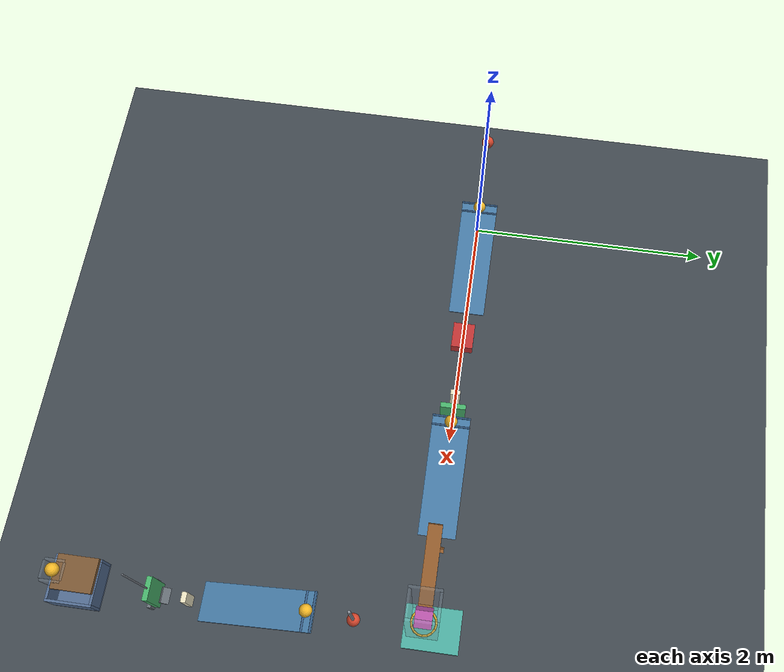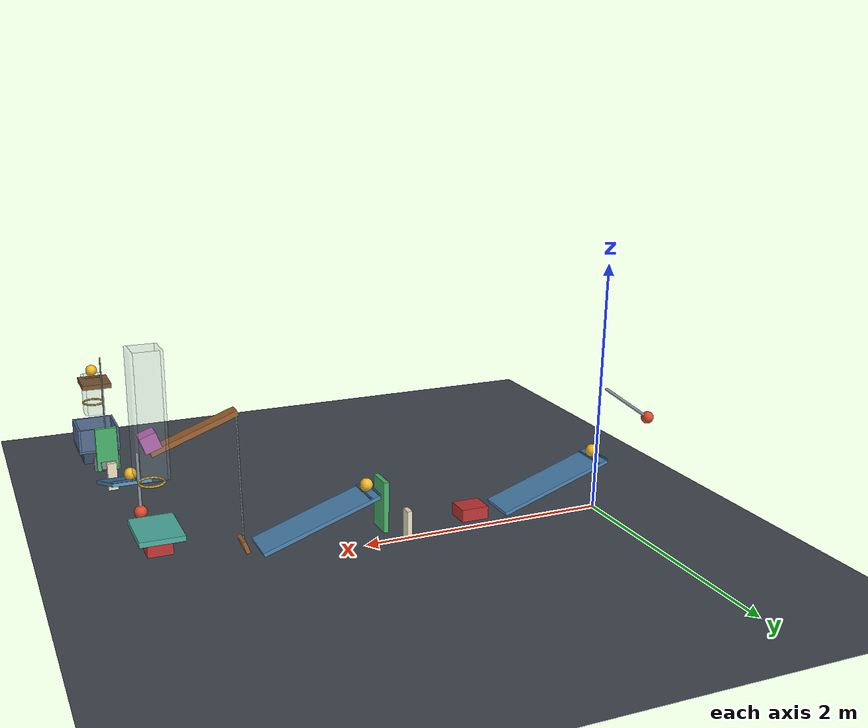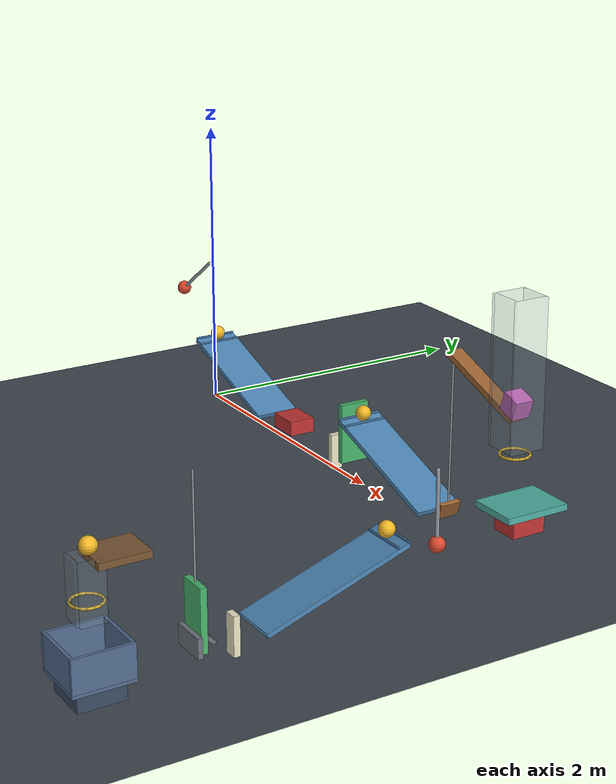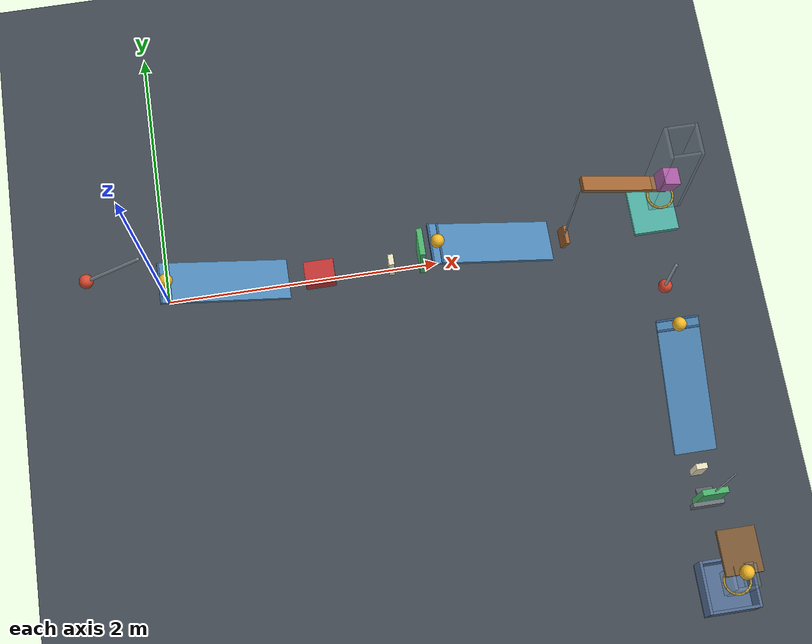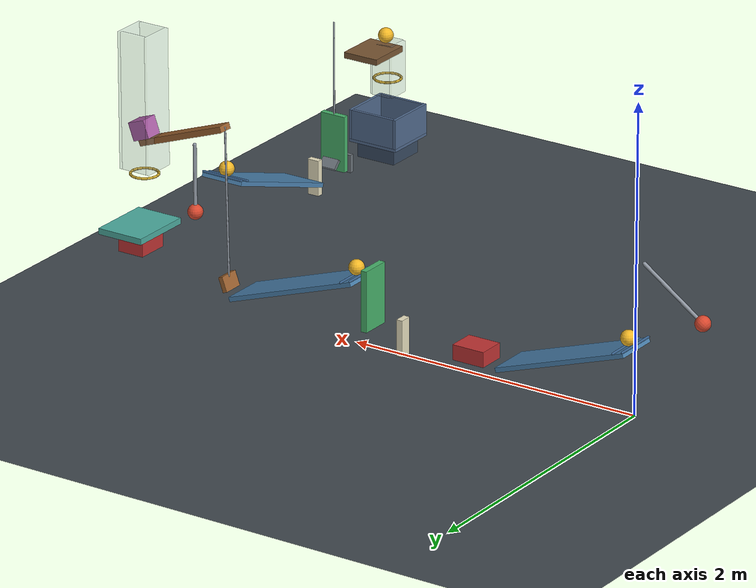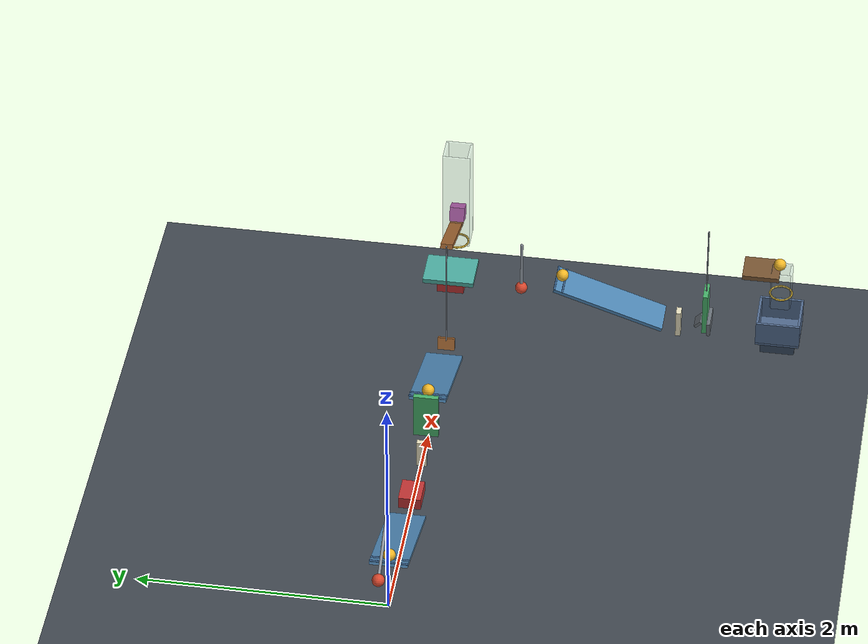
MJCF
<mujoco model="passive_chain_reaction">
  <!-- SI units. All generalized velocities are zero in the start keyframe. -->
  <!-- MuJoCo has compliant contacts rather than a Newton restitution coefficient. -->
  <!-- solref damping ratio 0.6901 approximates restitution 0.05. -->
  <!-- This is an unexecuted candidate, not a simulation-verified chain. -->
  <!-- Ring1 is compliant: a perfectly rigid 0.12 m cube cannot pass a perfectly rigid circular 0.16 m aperture. -->

  <compiler angle="degree" autolimits="true" inertiafromgeom="true"/>
  <option timestep="0.002" gravity="0 0 -9.81" integrator="implicitfast" cone="elliptic" iterations="100" tolerance="1e-9"/>
  <size njmax="3000" nconmax="1000"/>

  <visual>
    <headlight ambient="0.4 0.4 0.4" diffuse="0.7 0.7 0.7" specular="0.2 0.2 0.2"/>
    <map znear="0.01" zfar="50"/>
  </visual>

  <worldbody>
    <light name="overhead_light" pos="2 -1 6" dir="0 0 -1" directional="true"/>
    <camera name="overview" pos="7 -8 6" xyaxes="0.8 0.6 0 -0.3 0.4 0.866"/>
    <geom name="floor" type="plane" size="10 10 0.1" friction="0.68 0.001 0.0001" solref="0.006 0.6901" solimp="0.95 0.99 0.001" rgba="0.25 0.28 0.31 1"/>

    <!-- First pendulum: its starting body orientation is 55 degrees left of vertical. -->
    <body name="pendulum1" pos="-0.055 0 0.99588" quat="0.8870108 0 0.4617486 0">
      <joint name="pendulum1_hinge" type="hinge" axis="0 1 0" range="-75 0" damping="0.04"/>
      <geom name="pendulum1_rod" type="capsule" fromto="0 0 0 0 0 -0.50" size="0.012" mass="0.05" friction="0.68 0.001 0.0001" solref="0.006 0.6901" rgba="0.55 0.58 0.62 1"/>
      <geom name="pendulum1_bob" type="sphere" pos="0 0 -0.50" size="0.05" mass="0.35" friction="0.68 0.001 0.0001" solref="0.006 0.6901" rgba="0.85 0.28 0.18 1"/>
    </body>

    <body name="ball1" pos="0.049371 0 0.49588">
      <freejoint name="ball1_free"/>
      <geom name="ball1_geom" type="sphere" size="0.05" mass="0.20" friction="0.68 0.001 0.0001" solref="0.006 0.6901" solimp="0.95 0.99 0.001" rgba="0.95 0.72 0.15 1"/>
    </body>

    <!-- Each ramp is 0.95 m along its slope, 0.30 m wide, and inclined 19 degrees. -->
    <!-- Small transverse ridges form passive starting seats for the ramp balls. -->
    <body name="ramp1" pos="0.444238 0 0.290462" quat="0.9862856 0 0.1650476 0">
      <geom name="ramp1_surface" type="box" size="0.475 0.15 0.015" friction="0.68 0.001 0.0001" solref="0.006 0.6901" rgba="0.30 0.52 0.70 1"/>
      <geom name="ramp1_seat_front" type="capsule" fromto="-0.405 -0.145 0.018 -0.405 0.145 0.018" size="0.008" friction="0.68 0.001 0.0001" solref="0.006 0.6901" rgba="0.22 0.38 0.55 1"/>
      <geom name="ramp1_seat_back" type="capsule" fromto="-0.475 -0.145 0.018 -0.475 0.145 0.018" size="0.008" friction="0.68 0.001 0.0001" solref="0.006 0.6901" rgba="0.22 0.38 0.55 1"/>
    </body>

    <body name="cart1" pos="1.128243 0 0.15">
      <joint name="cart1_slide" type="slide" axis="1 0 0" range="0 0.40" damping="0.20"/>
      <geom name="cart1_geom" type="box" size="0.11 0.09 0.05" mass="0.50" friction="0.68 0.001 0.0001" solref="0.006 0.6901" rgba="0.75 0.20 0.20 1"/>
    </body>

    <body name="domino1" pos="1.658243 0 0.12">
      <freejoint name="domino1_free"/>
      <geom name="domino1_geom" type="box" size="0.02 0.04 0.12" mass="0.25" friction="0.68 0.001 0.0001" solref="0.006 0.6901" solimp="0.95 0.99 0.001" rgba="0.92 0.89 0.76 1"/>
    </body>

    <body name="flap1" pos="1.878243 0 0.53">
      <joint name="flap1_hinge" type="hinge" axis="0 -1 0" range="0 65" damping="0.04" solreflimit="0.004 1"/>
      <geom name="flap1_panel" type="box" pos="0 0 -0.20" size="0.02 0.10 0.20" mass="0.30" friction="0.68 0.001 0.0001" solref="0.006 0.6901" rgba="0.28 0.70 0.42 1"/>
    </body>

    <body name="ball2" pos="1.997614 0 0.49588">
      <freejoint name="ball2_free"/>
      <geom name="ball2_geom" type="sphere" size="0.05" mass="0.20" friction="0.68 0.001 0.0001" solref="0.006 0.6901" solimp="0.95 0.99 0.001" rgba="0.95 0.72 0.15 1"/>
    </body>

    <body name="ramp2" pos="2.392481 0 0.290462" quat="0.9862856 0 0.1650476 0">
      <geom name="ramp2_surface" type="box" size="0.475 0.15 0.015" friction="0.68 0.001 0.0001" solref="0.006 0.6901" rgba="0.30 0.52 0.70 1"/>
      <geom name="ramp2_seat_front" type="capsule" fromto="-0.405 -0.145 0.018 -0.405 0.145 0.018" size="0.008" friction="0.68 0.001 0.0001" solref="0.006 0.6901" rgba="0.22 0.38 0.55 1"/>
      <geom name="ramp2_seat_back" type="capsule" fromto="-0.475 -0.145 0.018 -0.475 0.145 0.018" size="0.008" friction="0.68 0.001 0.0001" solref="0.006 0.6901" rgba="0.22 0.38 0.55 1"/>
    </body>

    <!-- The seesaw has a lightweight rigid input arm reaching the ramp exit. -->
    <!-- Its beam starts 20 degrees right-end-down and has 40 degrees of travel. -->
    <body name="seesaw1" pos="3.271486 0 1.08" quat="0.9848078 0 0.1736482 0">
      <joint name="seesaw1_hinge" type="hinge" axis="0 -1 0" range="0 40" damping="0.04" solreflimit="0.004 1"/>
      <geom name="seesaw1_beam" type="box" size="0.325 0.05 0.02" mass="0.540" friction="0.68 0.001 0.0001" solref="0.006 0.6901" rgba="0.62 0.39 0.19 1"/>
      <geom name="seesaw1_input_arm" type="capsule" fromto="-0.325 0 0 0.00237 0 -0.956887" size="0.006" mass="0.001" friction="0.68 0.001 0.0001" solref="0.006 0.6901" rgba="0.55 0.58 0.62 1"/>
      <geom name="seesaw1_input_pad" type="box" pos="0.00237 0 -0.956887" size="0.015 0.07 0.05" mass="0.009" friction="0.68 0.001 0.0001" solref="0.006 0.6901" rgba="0.62 0.39 0.19 1"/>
    </body>

    <body name="block1" pos="3.576054 0 1.054279" quat="0.9848078 0 0.1736482 0">
      <freejoint name="block1_free"/>
      <geom name="block1_geom" type="box" size="0.06 0.06 0.06" mass="0.35" friction="0.68 0.001 0.0001" solref="0.006 0.6901" solimp="0.95 0.99 0.001" rgba="0.78 0.36 0.72 1"/>
    </body>

    <!-- Sixteen capsule segments approximate a horizontal circular ring. -->
    <!-- The minimum clear diameter is 0.16 m. -->
    <body name="ring1" pos="3.576054 0 0.754279">
      <geom name="ring1_segment01" type="capsule" fromto="0.089724 0 0 0.082894 0.034336 0" size="0.008" priority="1" friction="0.68 0.001 0.0001" solref="0.03 0.6901" solimp="0.90 0.95 0.01" rgba="0.80 0.66 0.18 1"/>
      <geom name="ring1_segment02" type="capsule" fromto="0.082894 0.034336 0 0.063445 0.063445 0" size="0.008" priority="1" friction="0.68 0.001 0.0001" solref="0.03 0.6901" solimp="0.90 0.95 0.01" rgba="0.80 0.66 0.18 1"/>
      <geom name="ring1_segment03" type="capsule" fromto="0.063445 0.063445 0 0.034336 0.082894 0" size="0.008" priority="1" friction="0.68 0.001 0.0001" solref="0.03 0.6901" solimp="0.90 0.95 0.01" rgba="0.80 0.66 0.18 1"/>
      <geom name="ring1_segment04" type="capsule" fromto="0.034336 0.082894 0 0 0.089724 0" size="0.008" priority="1" friction="0.68 0.001 0.0001" solref="0.03 0.6901" solimp="0.90 0.95 0.01" rgba="0.80 0.66 0.18 1"/>
      <geom name="ring1_segment05" type="capsule" fromto="0 0.089724 0 -0.034336 0.082894 0" size="0.008" priority="1" friction="0.68 0.001 0.0001" solref="0.03 0.6901" solimp="0.90 0.95 0.01" rgba="0.80 0.66 0.18 1"/>
      <geom name="ring1_segment06" type="capsule" fromto="-0.034336 0.082894 0 -0.063445 0.063445 0" size="0.008" priority="1" friction="0.68 0.001 0.0001" solref="0.03 0.6901" solimp="0.90 0.95 0.01" rgba="0.80 0.66 0.18 1"/>
      <geom name="ring1_segment07" type="capsule" fromto="-0.063445 0.063445 0 -0.082894 0.034336 0" size="0.008" priority="1" friction="0.68 0.001 0.0001" solref="0.03 0.6901" solimp="0.90 0.95 0.01" rgba="0.80 0.66 0.18 1"/>
      <geom name="ring1_segment08" type="capsule" fromto="-0.082894 0.034336 0 -0.089724 0 0" size="0.008" priority="1" friction="0.68 0.001 0.0001" solref="0.03 0.6901" solimp="0.90 0.95 0.01" rgba="0.80 0.66 0.18 1"/>
      <geom name="ring1_segment09" type="capsule" fromto="-0.089724 0 0 -0.082894 -0.034336 0" size="0.008" priority="1" friction="0.68 0.001 0.0001" solref="0.03 0.6901" solimp="0.90 0.95 0.01" rgba="0.80 0.66 0.18 1"/>
      <geom name="ring1_segment10" type="capsule" fromto="-0.082894 -0.034336 0 -0.063445 -0.063445 0" size="0.008" priority="1" friction="0.68 0.001 0.0001" solref="0.03 0.6901" solimp="0.90 0.95 0.01" rgba="0.80 0.66 0.18 1"/>
      <geom name="ring1_segment11" type="capsule" fromto="-0.063445 -0.063445 0 -0.034336 -0.082894 0" size="0.008" priority="1" friction="0.68 0.001 0.0001" solref="0.03 0.6901" solimp="0.90 0.95 0.01" rgba="0.80 0.66 0.18 1"/>
      <geom name="ring1_segment12" type="capsule" fromto="-0.034336 -0.082894 0 0 -0.089724 0" size="0.008" priority="1" friction="0.68 0.001 0.0001" solref="0.03 0.6901" solimp="0.90 0.95 0.01" rgba="0.80 0.66 0.18 1"/>
      <geom name="ring1_segment13" type="capsule" fromto="0 -0.089724 0 0.034336 -0.082894 0" size="0.008" priority="1" friction="0.68 0.001 0.0001" solref="0.03 0.6901" solimp="0.90 0.95 0.01" rgba="0.80 0.66 0.18 1"/>
      <geom name="ring1_segment14" type="capsule" fromto="0.034336 -0.082894 0 0.063445 -0.063445 0" size="0.008" priority="1" friction="0.68 0.001 0.0001" solref="0.03 0.6901" solimp="0.90 0.95 0.01" rgba="0.80 0.66 0.18 1"/>
      <geom name="ring1_segment15" type="capsule" fromto="0.063445 -0.063445 0 0.082894 -0.034336 0" size="0.008" priority="1" friction="0.68 0.001 0.0001" solref="0.03 0.6901" solimp="0.90 0.95 0.01" rgba="0.80 0.66 0.18 1"/>
      <geom name="ring1_segment16" type="capsule" fromto="0.082894 -0.034336 0 0.089724 0 0" size="0.008" priority="1" friction="0.68 0.001 0.0001" solref="0.03 0.6901" solimp="0.90 0.95 0.01" rgba="0.80 0.66 0.18 1"/>
      <geom name="ring1_guide_xplus" type="box" pos="0.10 0 0.495" size="0.01 0.11 0.45" friction="0.68 0.001 0.0001" solref="0.006 0.6901" rgba="0.55 0.62 0.68 0.25"/>
      <geom name="ring1_guide_xminus" type="box" pos="-0.10 0 0.495" size="0.01 0.11 0.45" friction="0.68 0.001 0.0001" solref="0.006 0.6901" rgba="0.55 0.62 0.68 0.25"/>
      <geom name="ring1_guide_yplus" type="box" pos="0 0.10 0.495" size="0.09 0.01 0.45" friction="0.68 0.001 0.0001" solref="0.006 0.6901" rgba="0.55 0.62 0.68 0.25"/>
      <geom name="ring1_guide_yminus" type="box" pos="0 -0.10 0.495" size="0.09 0.01 0.45" friction="0.68 0.001 0.0001" solref="0.006 0.6901" rgba="0.55 0.62 0.68 0.25"/>
    </body>

    <!-- Bearing stiction holds the horizontal door until it is struck. -->
    <body name="door1" pos="3.576054 -0.15 0.424279">
      <joint name="door1_hinge" type="hinge" axis="-1 0 0" range="0 70" damping="0.04" frictionloss="0.94" solreflimit="0.004 1"/>
      <geom name="door1_panel" type="box" pos="0 0.21 0" size="0.16 0.21 0.02" mass="0.45" friction="0.68 0.001 0.0001" solref="0.006 0.6901" rgba="0.30 0.68 0.63 1"/>
    </body>

    <body name="cart2" pos="3.576054 0.05 0.32">
      <joint name="cart2_slide" type="slide" axis="0 -1 0" range="0 0.42" damping="0.20"/>
      <geom name="cart2_geom" type="box" size="0.09 0.11 0.05" mass="0.50" friction="0.68 0.001 0.0001" solref="0.006 0.6901" rgba="0.75 0.20 0.20 1"/>
    </body>

    <body name="pendulum2" pos="3.576054 -0.53 0.77">
      <joint name="pendulum2_hinge" type="hinge" axis="-1 0 0" range="0 38" damping="0.04" solreflimit="0.004 1"/>
      <geom name="pendulum2_rod" type="capsule" fromto="0 0 0 0 0 -0.45" size="0.012" mass="0.03" friction="0.68 0.001 0.0001" solref="0.006 0.6901" rgba="0.55 0.58 0.62 1"/>
      <geom name="pendulum2_bob" type="sphere" pos="0 0 -0.45" size="0.05" mass="0.32" friction="0.68 0.001 0.0001" solref="0.006 0.6901" rgba="0.85 0.28 0.18 1"/>
    </body>

    <body name="ball3" pos="3.576054 -0.87105 0.49588">
      <freejoint name="ball3_free"/>
      <geom name="ball3_geom" type="sphere" size="0.05" mass="0.20" friction="0.68 0.001 0.0001" solref="0.006 0.6901" solimp="0.95 0.99 0.001" rgba="0.95 0.72 0.15 1"/>
    </body>

    <body name="ramp3" pos="3.576054 -1.265917 0.290462" quat="0.6974073 0.1167078 0.1167078 -0.6974073">
      <geom name="ramp3_surface" type="box" size="0.475 0.15 0.015" friction="0.68 0.001 0.0001" solref="0.006 0.6901" rgba="0.30 0.52 0.70 1"/>
      <geom name="ramp3_seat_front" type="capsule" fromto="-0.405 -0.145 0.018 -0.405 0.145 0.018" size="0.008" friction="0.68 0.001 0.0001" solref="0.006 0.6901" rgba="0.22 0.38 0.55 1"/>
      <geom name="ramp3_seat_back" type="capsule" fromto="-0.475 -0.145 0.018 -0.475 0.145 0.018" size="0.008" friction="0.68 0.001 0.0001" solref="0.006 0.6901" rgba="0.22 0.38 0.55 1"/>
    </body>

    <body name="domino2" pos="3.576054 -1.839922 0.12">
      <freejoint name="domino2_free"/>
      <geom name="domino2_geom" type="box" size="0.04 0.02 0.12" mass="0.25" friction="0.68 0.001 0.0001" solref="0.006 0.6901" solimp="0.95 0.99 0.001" rgba="0.92 0.89 0.76 1"/>
    </body>

    <!-- Flap2 uses a rigid offset arm and a mechanically released torsion spring. -->
    <body name="flap2" pos="3.576054 -2.059922 1.10">
      <joint name="flap2_hinge" type="hinge" axis="-1 0 0" range="0 60" damping="0.04" stiffness="1.5" springref="150" solreflimit="0.004 1"/>
      <geom name="flap2_panel" type="box" pos="0 0 -0.81" size="0.09 0.02 0.19" mass="0.278" friction="0.68 0.001 0.0001" solref="0.006 0.6901" rgba="0.28 0.70 0.42 1"/>
      <geom name="flap2_offset_arm" type="capsule" fromto="0 0 0 0 0 -0.62" size="0.006" mass="0.002" friction="0.68 0.001 0.0001" solref="0.006 0.6901" rgba="0.55 0.58 0.62 1"/>
    </body>

    <!-- The wedge is shifted toward domino2, leaving approximately 1.77 mm clearance from flap2_panel at start. -->
    <body name="flap2_latch" pos="3.576054 -2.094922 0.15">
      <joint name="flap2_latch_slide" type="slide" axis="0 0 -1" range="0 0.14" damping="0.20" frictionloss="0.50"/>
      <geom name="flap2_latch_pin" type="box" size="0.11 0.015 0.06" mass="0.020" friction="0.68 0.001 0.0001" solref="0.006 0.6901" rgba="0.42 0.45 0.48 1"/>
      <geom name="flap2_latch_wedge" type="box" pos="0 0.090 0.005" quat="0.9238795 -0.3826834 0 0" size="0.06 0.035 0.012" mass="0.010" friction="0.68 0.001 0.0001" solref="0.006 0.6901" rgba="0.42 0.45 0.48 1"/>
    </body>

    <body name="ball4" pos="3.576054 -2.649922 0.83">
      <freejoint name="ball4_free"/>
      <geom name="ball4_geom" type="sphere" size="0.05" mass="0.20" friction="0.68 0.001 0.0001" solref="0.006 0.6901" solimp="0.95 0.99 0.001" rgba="0.95 0.72 0.15 1"/>
    </body>

    <!-- Shelf top is at 0.78 m; transparent guides limit lateral drift after release. -->
    <body name="shelf1" pos="3.576054 -2.504922 0.76">
      <geom name="shelf1_surface" type="box" size="0.125 0.15 0.02" friction="0.68 0.001 0.0001" solref="0.006 0.6901" rgba="0.48 0.34 0.20 1"/>
      <geom name="shelf1_guide_xplus" type="box" pos="0.075 -0.165 -0.155" size="0.01 0.075 0.175" friction="0.68 0.001 0.0001" solref="0.006 0.6901" rgba="0.55 0.62 0.68 0.25"/>
      <geom name="shelf1_guide_xminus" type="box" pos="-0.075 -0.165 -0.155" size="0.01 0.075 0.175" friction="0.68 0.001 0.0001" solref="0.006 0.6901" rgba="0.55 0.62 0.68 0.25"/>
      <geom name="shelf1_guide_yplus" type="box" pos="0 -0.09 -0.155" size="0.065 0.01 0.175" friction="0.68 0.001 0.0001" solref="0.006 0.6901" rgba="0.55 0.62 0.68 0.25"/>
      <geom name="shelf1_guide_yminus" type="box" pos="0 -0.24 -0.155" size="0.065 0.01 0.175" friction="0.68 0.001 0.0001" solref="0.006 0.6901" rgba="0.55 0.62 0.68 0.25"/>
    </body>

    <body name="ring2" pos="3.576054 -2.669922 0.53">
      <geom name="ring2_segment01" type="capsule" fromto="0.089724 0 0 0.082894 0.034336 0" size="0.008" friction="0.68 0.001 0.0001" solref="0.006 0.6901" rgba="0.80 0.66 0.18 1"/>
      <geom name="ring2_segment02" type="capsule" fromto="0.082894 0.034336 0 0.063445 0.063445 0" size="0.008" friction="0.68 0.001 0.0001" solref="0.006 0.6901" rgba="0.80 0.66 0.18 1"/>
      <geom name="ring2_segment03" type="capsule" fromto="0.063445 0.063445 0 0.034336 0.082894 0" size="0.008" friction="0.68 0.001 0.0001" solref="0.006 0.6901" rgba="0.80 0.66 0.18 1"/>
      <geom name="ring2_segment04" type="capsule" fromto="0.034336 0.082894 0 0 0.089724 0" size="0.008" friction="0.68 0.001 0.0001" solref="0.006 0.6901" rgba="0.80 0.66 0.18 1"/>
      <geom name="ring2_segment05" type="capsule" fromto="0 0.089724 0 -0.034336 0.082894 0" size="0.008" friction="0.68 0.001 0.0001" solref="0.006 0.6901" rgba="0.80 0.66 0.18 1"/>
      <geom name="ring2_segment06" type="capsule" fromto="-0.034336 0.082894 0 -0.063445 0.063445 0" size="0.008" friction="0.68 0.001 0.0001" solref="0.006 0.6901" rgba="0.80 0.66 0.18 1"/>
      <geom name="ring2_segment07" type="capsule" fromto="-0.063445 0.063445 0 -0.082894 0.034336 0" size="0.008" friction="0.68 0.001 0.0001" solref="0.006 0.6901" rgba="0.80 0.66 0.18 1"/>
      <geom name="ring2_segment08" type="capsule" fromto="-0.082894 0.034336 0 -0.089724 0 0" size="0.008" friction="0.68 0.001 0.0001" solref="0.006 0.6901" rgba="0.80 0.66 0.18 1"/>
      <geom name="ring2_segment09" type="capsule" fromto="-0.089724 0 0 -0.082894 -0.034336 0" size="0.008" friction="0.68 0.001 0.0001" solref="0.006 0.6901" rgba="0.80 0.66 0.18 1"/>
      <geom name="ring2_segment10" type="capsule" fromto="-0.082894 -0.034336 0 -0.063445 -0.063445 0" size="0.008" friction="0.68 0.001 0.0001" solref="0.006 0.6901" rgba="0.80 0.66 0.18 1"/>
      <geom name="ring2_segment11" type="capsule" fromto="-0.063445 -0.063445 0 -0.034336 -0.082894 0" size="0.008" friction="0.68 0.001 0.0001" solref="0.006 0.6901" rgba="0.80 0.66 0.18 1"/>
      <geom name="ring2_segment12" type="capsule" fromto="-0.034336 -0.082894 0 0 -0.089724 0" size="0.008" friction="0.68 0.001 0.0001" solref="0.006 0.6901" rgba="0.80 0.66 0.18 1"/>
      <geom name="ring2_segment13" type="capsule" fromto="0 -0.089724 0 0.034336 -0.082894 0" size="0.008" friction="0.68 0.001 0.0001" solref="0.006 0.6901" rgba="0.80 0.66 0.18 1"/>
      <geom name="ring2_segment14" type="capsule" fromto="0.034336 -0.082894 0 0.063445 -0.063445 0" size="0.008" friction="0.68 0.001 0.0001" solref="0.006 0.6901" rgba="0.80 0.66 0.18 1"/>
      <geom name="ring2_segment15" type="capsule" fromto="0.063445 -0.063445 0 0.082894 -0.034336 0" size="0.008" friction="0.68 0.001 0.0001" solref="0.006 0.6901" rgba="0.80 0.66 0.18 1"/>
      <geom name="ring2_segment16" type="capsule" fromto="0.082894 -0.034336 0 0.089724 0 0" size="0.008" friction="0.68 0.001 0.0001" solref="0.006 0.6901" rgba="0.80 0.66 0.18 1"/>
    </body>

    <!-- Inner footprint 0.32 by 0.32 m; walls are 0.20 m high and 0.02 m thick. -->
    <!-- The base top is at 0.13 m, giving a resting ball-center height of 0.18 m. -->
    <body name="box1" pos="3.576054 -2.669922 0.12">
      <geom name="box1_base" type="box" size="0.18 0.18 0.01" friction="0.68 0.001 0.0001" solref="0.006 0.6901" solimp="0.95 0.99 0.001" rgba="0.32 0.42 0.56 1"/>
      <geom name="box1_wall_xplus" type="box" pos="0.17 0 0.11" size="0.01 0.18 0.10" friction="0.68 0.001 0.0001" solref="0.006 0.6901" rgba="0.32 0.42 0.56 1"/>
      <geom name="box1_wall_xminus" type="box" pos="-0.17 0 0.11" size="0.01 0.18 0.10" friction="0.68 0.001 0.0001" solref="0.006 0.6901" rgba="0.32 0.42 0.56 1"/>
      <geom name="box1_wall_yplus" type="box" pos="0 0.17 0.11" size="0.16 0.01 0.10" friction="0.68 0.001 0.0001" solref="0.006 0.6901" rgba="0.32 0.42 0.56 1"/>
      <geom name="box1_wall_yminus" type="box" pos="0 -0.17 0.11" size="0.16 0.01 0.10" friction="0.68 0.001 0.0001" solref="0.006 0.6901" rgba="0.32 0.42 0.56 1"/>
      <geom name="box1_support" type="box" pos="0 0 -0.065" size="0.14 0.14 0.055" friction="0.68 0.001 0.0001" solref="0.006 0.6901" rgba="0.22 0.29 0.38 1"/>
    </body>
  </worldbody>

  <!-- These exclusions provide clearance for the offset striking mechanisms. -->
  <contact>
    <exclude name="flap1_ramp2_clearance" body1="flap1" body2="ramp2"/>
    <exclude name="flap2_shelf1_clearance" body1="flap2" body2="shelf1"/>
    <exclude name="seesaw1_ring1_guide_clearance" body1="seesaw1" body2="ring1"/>
  </contact>

  <keyframe>
    <key name="start" time="0"/>
  </keyframe>
</mujoco>
